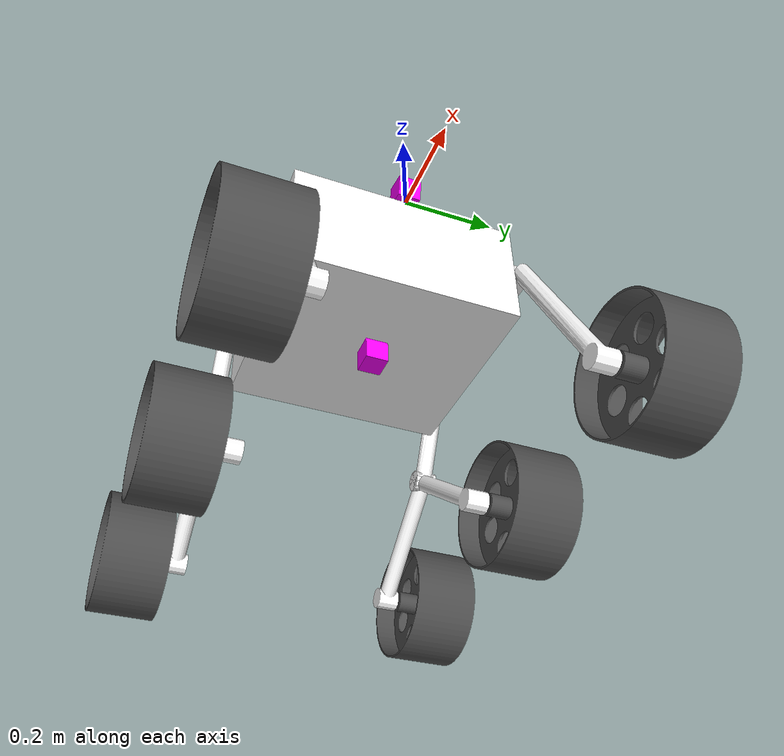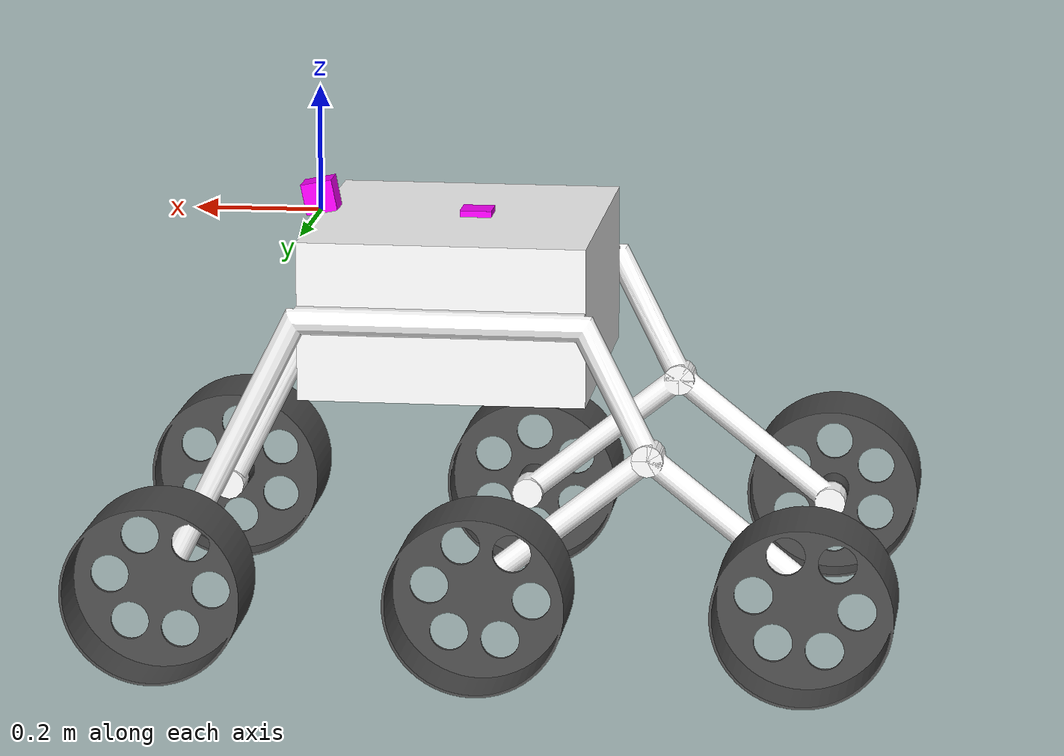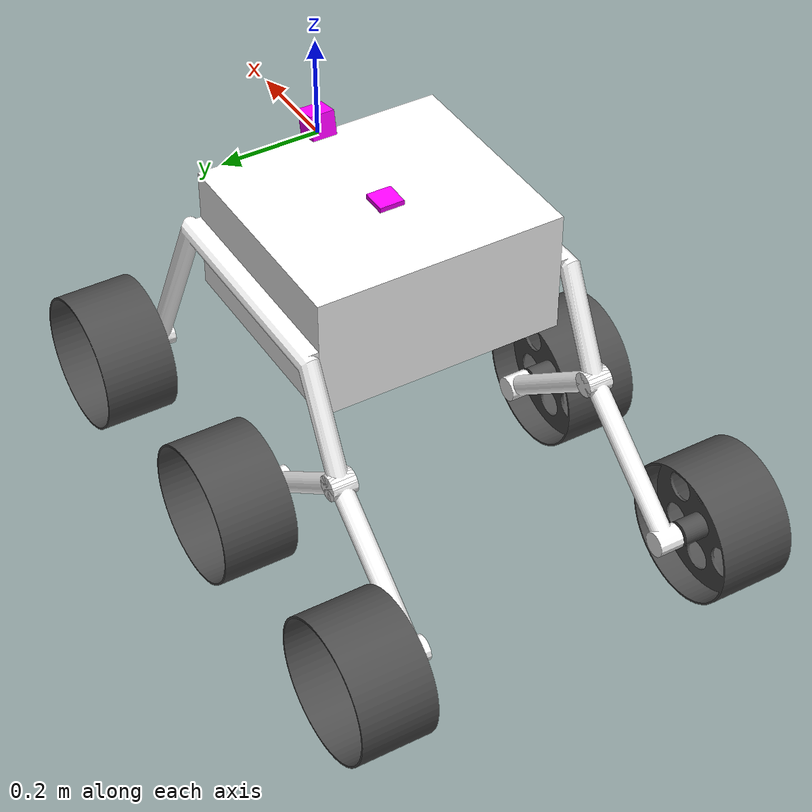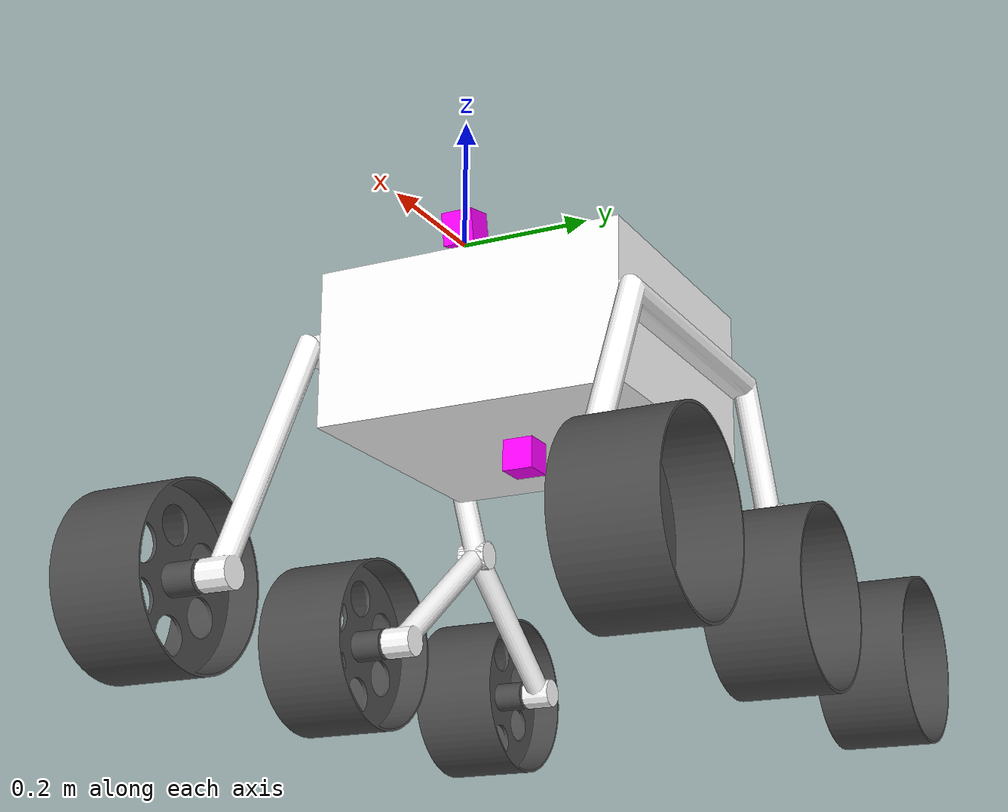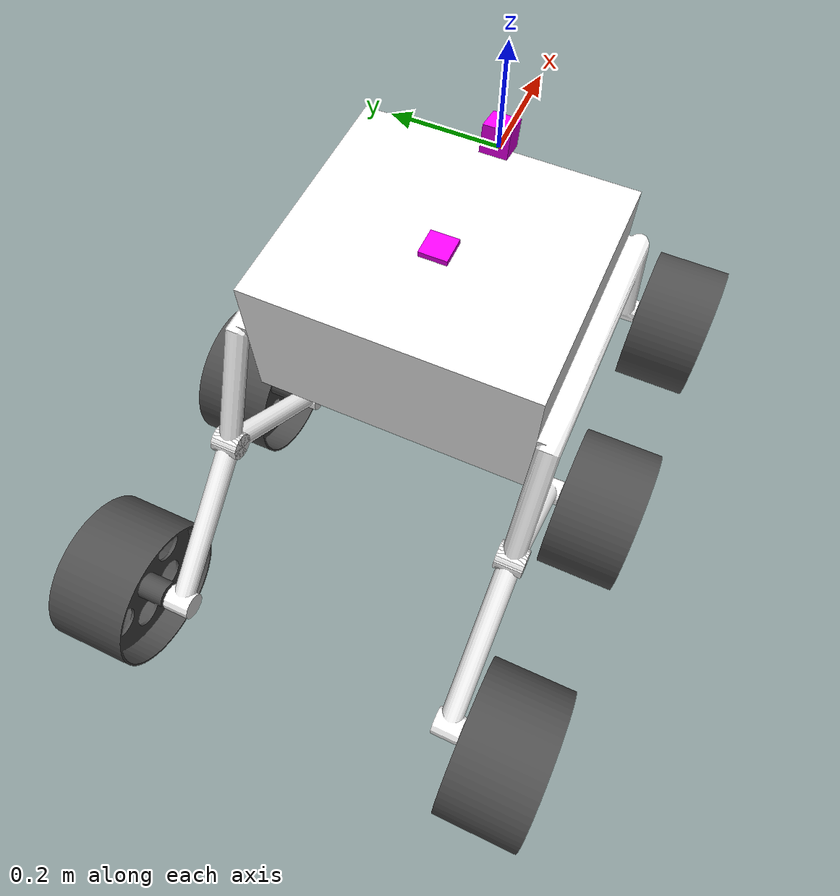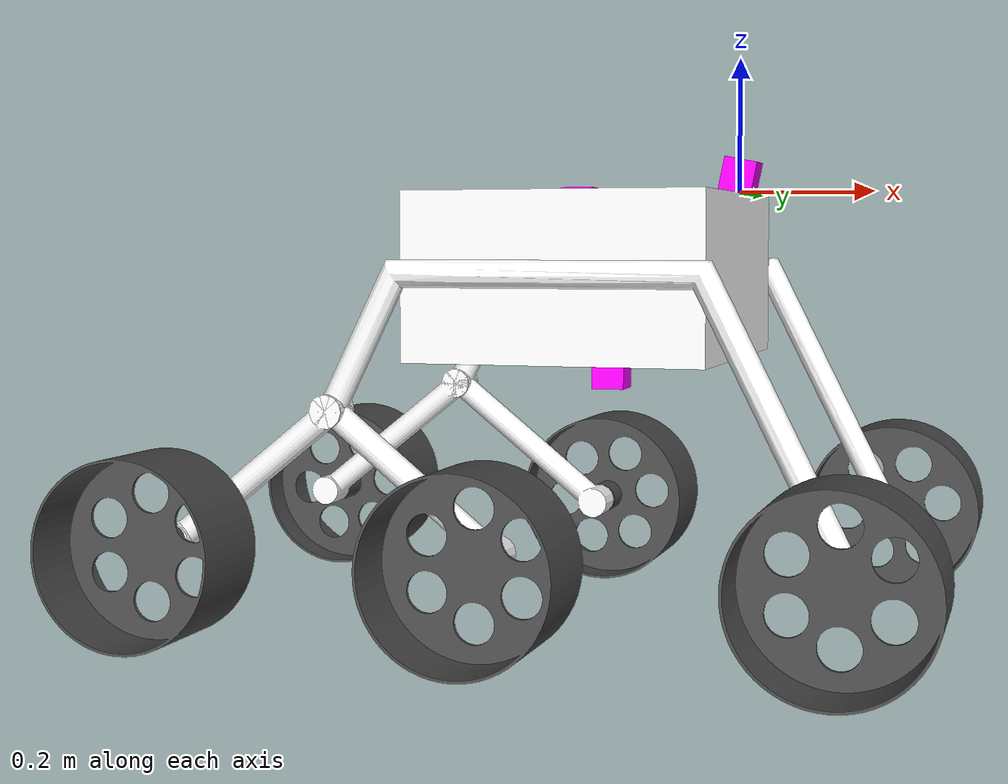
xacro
<?xml version="1.0" encoding="utf-8"?>
<robot
  name="rover" xmlns:xacro="http://ros.org/wiki/xacro">
  <gazebo>
    <plugin name="gazebo_ros_control" filename="libgazebo_ros_control.so">
      <robotNamespace>/rover</robotNamespace>
    </plugin>
  </gazebo>
  <link
    name="base_link">
    <inertial>
      <origin
        xyz="-0.225 -1.11022302462516E-16 -0.125"
        rpy="0 0 0" />
      <mass
        value="30.9375" />
      <inertia
        ixx="1.7431640625"
        ixy="-3.78458838342273E-17"
        ixz="-7.7412035115465E-18"
        iyy="1.478203125"
        iyz="9.94729441762504E-34"
        izz="2.5241015625" />
    </inertial>
    <visual>
      <origin
        xyz="0 0 0"
        rpy="0 0 0" />
      <geometry>
        <mesh
          filename="package://rover/meshes/base_link.STL" />
      </geometry>
      <material
        name="">
        <color
          rgba="1 1 1 1" />
      </material>
    </visual>
    <collision>
      <origin
        xyz="0 0 0"
        rpy="0 0 0" />
      <geometry>
        <mesh
          filename="package://rover/meshes/base_link.STL" />
      </geometry>
    </collision>
  </link>

  <link name="body_imu">
    <inertial>
      <origin
        xyz="0 0 0"
        rpy="0 0 0" />
      <mass
        value="0.1" />
      <inertia
        ixx="1E-6"
        ixy="1E-6"
        ixz="1E-6"
        iyy="1E-6"
        iyz="1E-6"
        izz="1E-6" />
    </inertial>
    <visual>
      <origin
        xyz="0 0 0"
        rpy="0 0 0" />
      <geometry>
        <box size="0.05 0.05 0.01"/>
      </geometry>
      <material
        name="">
        <color
          rgba="1 0 1 1" />
      </material>
    </visual>
    <collision>
      <origin
        xyz="0 0 0"
        rpy="0 0 0" />
      <geometry>
        <box size="0.05 0.05 0.01"/>
      </geometry>
    </collision>
  </link>
  <joint
    name="base_to_body_imu"
    type="fixed">
    <origin
      xyz="-0.25 0 0.005"
      rpy="0 0 0" />
    <parent
      link="base_link" />
    <child
      link="body_imu" />
    <axis
      xyz="0 0 0" />
  </joint>

<link name="body_camera">
    <inertial>
      <origin
        xyz="0 0 0"
        rpy="0 0 0" />
      <mass
        value="0.1" />
      <inertia
        ixx="1E-6"
        ixy="1E-6"
        ixz="1E-6"
        iyy="1E-6"
        iyz="1E-6"
        izz="1E-6" />
    </inertial>
    <visual>
      <origin
        xyz="0 0 0"
        rpy="0 0 0" />
      <geometry>
        <box size="0.05 0.05 0.05"/>
      </geometry>
      <material
        name="">
        <color
          rgba="1 0 1 1" />
      </material>
    </visual>
    <collision>
      <origin
        xyz="0 0 0"
        rpy="0 0 0" />
      <geometry>
        <box size="0.05 0.05 0.01"/>
      </geometry>
    </collision>
  </link>
  <joint
    name="base_to_body_camera"
    type="fixed">
    <origin
      xyz="0 0 0.025"
      rpy="0 0.2 0" />
    <parent
      link="base_link" />
    <child
      link="body_camera" />
    <axis
      xyz="0 0 0" />
  </joint>
  <joint name="camera_optical_joint" type="fixed">
    <!-- these values have to be these values otherwise the gazebo camera
        image won't be aligned properly with the frame it is supposedly
        originating from -->
    <origin xyz="0 0 0" rpy="${-pi/2} 0 ${-pi/2}"/>
    <parent link="body_camera"/>
    <child link="camera_link_optical"/>
  </joint>

  <link name="camera_link_optical">
  </link>

<link name="ground_camera">
    <inertial>
      <origin
        xyz="0 0 0"
        rpy="0 0 0" />
      <mass
        value="0.1" />
      <inertia
        ixx="1E-6"
        ixy="1E-6"
        ixz="1E-6"
        iyy="1E-6"
        iyz="1E-6"
        izz="1E-6" />
    </inertial>
    <visual>
      <origin
        xyz="0 0 0"
        rpy="0 0 0" />
      <geometry>
        <box size="0.05 0.05 0.05"/>
      </geometry>
      <material
        name="">
        <color
          rgba="1 0 1 1" />
      </material>
    </visual>
    <collision>
      <origin
        xyz="0 0 0"
        rpy="0 0 0" />
      <geometry>
        <box size="0.05 0.05 0.01"/>
      </geometry>
    </collision>
  </link>
  <joint
    name="base_to_ground_camera"
    type="fixed">
    <origin
      xyz="-0.200 0 -0.275"
      rpy="0 1.5707 0" />
    <parent
      link="base_link" />
    <child
      link="ground_camera" />
    <axis
      xyz="0 0 0" />
  </joint>
  <joint name="ground_camera_optical_joint" type="fixed">
    <!-- these values have to be these values otherwise the gazebo camera
        image won't be aligned properly with the frame it is supposedly
        originating from -->
    <origin xyz="0 0 0" rpy="${-pi/2} 0 ${-pi/2}"/>
    <parent link="ground_camera"/>
    <child link="ground_camera_link_optical"/>
  </joint>

  <link name="ground_camera_link_optical">
  </link>

  <link
    name="left_leg_upper">
    <inertial>
      <origin
        xyz="-0.194165747411793 -0.112389539399822 -0.000731351711592554"
        rpy="0 0 0" />
      <mass
        value="1.93248346185159" />
      <inertia
        ixx="0.0330489550335704"
        ixy="-0.0318954932035645"
        ixz="9.8708775108311E-05"
        iyy="0.126428004084038"
        iyz="0.000159249238895126"
        izz="0.159014173585941" />
    </inertial>
    <visual>
      <origin
        xyz="0 0 0"
        rpy="0 0 0" />
      <geometry>
        <mesh
          filename="package://rover/meshes/left_leg_upper.STL" />
      </geometry>
      <material
        name="">
        <color
          rgba="1 1 1 1" />
      </material>
    </visual>
    <collision>
      <origin
        xyz="0 0 0"
        rpy="0 0 0" />
      <geometry>
        <mesh
          filename="package://rover/meshes/left_leg_upper.STL" />
      </geometry>
    </collision>
  </link>
  <joint
    name="base_to_left_leg_upper"
    type="fixed">
    <origin
      xyz="-0.35 0.27 -0.12"
      rpy="1.5707963267949 0 3.14159265358979" />
    <parent
      link="base_link" />
    <child
      link="left_leg_upper" />
    <axis
      xyz="0 0 0" />
  </joint>
  <link
    name="left_front_wheel">
    <inertial>
      <origin
        xyz="0 0 -0.063051"
        rpy="0 0 0" />
      <mass
        value="1.9382" />
      <inertia
        ixx="0.016737"
        ixy="-4.3368E-18"
        ixz="-4.7847E-18"
        iyy="0.016737"
        iyz="-3.3107E-19"
        izz="0.027927" />
    </inertial>
    <visual>
      <origin
        xyz="0 0 0"
        rpy="0 0 0" />
      <geometry>
        <mesh
          filename="package://rover/meshes/left_front_wheel.STL" />
      </geometry>
      <material
        name="">
        <color
          rgba="0.29804 0.29804 0.29804 1" />
      </material>
    </visual>
    <collision>
      <origin
        xyz="0 0 0"
        rpy="0 0 0" />
      <geometry>
        <mesh
          filename="package://rover/meshes/left_front_wheel.STL" />
      </geometry>
    </collision>
  </link>
  <joint
    name="lf"
    type="continuous">
    <origin
      xyz="-0.55 -0.4 0.03"
      rpy="3.1416 0 -2.7485" />
    <parent
      link="left_leg_upper" />
    <child
      link="left_front_wheel" />
    <axis
      xyz="0 0 1" />
    <limit
      effort="60"
      velocity="20" />
    <dynamics
      damping="0.6"
      friction="1" />
  </joint>
  <link
    name="left_leg_lower">
    <inertial>
      <origin
        xyz="-3.20988925231469E-08 -0.10997054731385 9.21239687645681E-07"
        rpy="0 0 0" />
      <mass
        value="1.1716591412149" />
      <inertia
        ixx="0.00566372324013256"
        ixy="2.07742015864643E-08"
        ixz="-1.93567838383602E-08"
        iyy="0.0308249227849267"
        iyz="-1.50396529209713E-08"
        izz="0.0361793132911607" />
    </inertial>
    <visual>
      <origin
        xyz="0 0 0"
        rpy="0 0 0" />
      <geometry>
        <mesh
          filename="package://rover/meshes/left_leg_lower.STL" />
      </geometry>
      <material
        name="">
        <color
          rgba="1 1 1 1" />
      </material>
    </visual>
    <collision>
      <origin
        xyz="0 0 0"
        rpy="0 0 0" />
      <geometry>
        <mesh
          filename="package://rover/meshes/left_leg_lower.STL" />
      </geometry>
    </collision>
  </link>
  <joint
    name="left_leg_upper_to_lower"
    type="continuous">
    <origin
      xyz="0.2 -0.2 0"
      rpy="0 0 0" />
    <parent
      link="left_leg_upper" />
    <child
      link="left_leg_lower" />
    <axis
      xyz="0 0 1" />
    <limit
      lower="-1"
      upper="1"
      effort="0"
      velocity="0" />
  </joint>
  <link
    name="left_mid_wheel">
    <inertial>
      <origin
        xyz="4.1633E-17 0 -0.063051"
        rpy="0 0 0" />
      <mass
        value="1.9382" />
      <inertia
        ixx="0.016737"
        ixy="-2.6563E-18"
        ixz="-2.7439E-18"
        iyy="0.016737"
        iyz="8.0243E-19"
        izz="0.027927" />
    </inertial>
    <visual>
      <origin
        xyz="0 0 0"
        rpy="0 0 0" />
      <geometry>
        <mesh
          filename="package://rover/meshes/left_mid_wheel.STL" />
      </geometry>
      <material
        name="">
        <color
          rgba="0.29804 0.29804 0.29804 1" />
      </material>
    </visual>
    <collision>
      <origin
        xyz="0 0 0"
        rpy="0 0 0" />
      <geometry>
        <mesh
          filename="package://rover/meshes/left_mid_wheel.STL" />
      </geometry>
    </collision>
  </link>
  <joint
    name="lm"
    type="continuous">
    <origin
      xyz="-0.25 -0.2 0.03"
      rpy="3.1416 0 -1.6099" />
    <parent
      link="left_leg_lower" />
    <child
      link="left_mid_wheel" />
    <axis
      xyz="0 0 1" />
    <limit
      effort="60"
      velocity="20" />
    <dynamics
      damping="0.6"
      friction="1" />
  </joint>
  <link
    name="left_back_wheel">
    <inertial>
      <origin
        xyz="0 0 -0.063051"
        rpy="0 0 0" />
      <mass
        value="1.9382" />
      <inertia
        ixx="0.016737"
        ixy="-2.6021E-18"
        ixz="-8.0184E-18"
        iyy="0.016737"
        iyz="-3.2234E-19"
        izz="0.027927" />
    </inertial>
    <visual>
      <origin
        xyz="0 0 0"
        rpy="0 0 0" />
      <geometry>
        <mesh
          filename="package://rover/meshes/left_back_wheel.STL" />
      </geometry>
      <material
        name="">
        <color
          rgba="0.29804 0.29804 0.29804 1" />
      </material>
    </visual>
    <collision>
      <origin
        xyz="0 0 0"
        rpy="0 0 0" />
      <geometry>
        <mesh
          filename="package://rover/meshes/left_back_wheel.STL" />
      </geometry>
    </collision>
  </link>
  <joint
    name="lb"
    type="continuous">
    <origin
      xyz="0.25 -0.2 0.0299999999999998"
      rpy="3.14159265358979 0 -2.74849784316328" />
    <parent
      link="left_leg_lower" />
    <child
      link="left_back_wheel" />
    <axis
      xyz="0 0 1" />
    <limit
      effort="60"
      velocity="20" />
    <dynamics
      damping="0.6"
      friction="1" />
  </joint>
  <link
    name="right_leg_upper">
    <inertial>
      <origin
        xyz="0 0 0"
        rpy="0 0 0" />
      <mass
        value="1.93248346185159" />
      <inertia
        ixx="0.0330489550335704"
        ixy="-0.0318954932035645"
        ixz="9.8708775108311E-05"
        iyy="0.126428004084038"
        iyz="0.000159249238895126"
        izz="0.159014173585941" />
    </inertial>
    <visual>
      <origin
        xyz="0 0 0"
        rpy="0 0 0" />
      <geometry>
        <mesh
          filename="package://rover/meshes/right_leg_upper.STL" />
      </geometry>
      <material
        name="">
        <color
          rgba="1 1 1 1" />
      </material>
    </visual>
    <collision>
      <origin
        xyz="0 0 0"
        rpy="0 0 0" />
      <geometry>
        <mesh
          filename="package://rover/meshes/right_leg_upper.STL" />
      </geometry>
    </collision>
  </link>
  <joint
    name="base_to_right_leg_upper"
    type="fixed">
    <origin
      xyz="-0.35 -0.27 -0.12"
      rpy="1.5707963267949 0 3.14159265358979" />
    <parent
      link="base_link" />
    <child
      link="right_leg_upper" />
    <axis
      xyz="0 0 0" />
  </joint>
  <link
    name="right_front_wheel">
    <inertial>
      <origin
        xyz="-1.1102E-16 -8.3267E-17 -0.063051"
        rpy="0 0 0" />
      <mass
        value="1.9382" />
      <inertia
        ixx="0.016737"
        ixy="3.8392E-18"
        ixz="-1.3175E-18"
        iyy="0.016737"
        iyz="3.5572E-19"
        izz="0.027927" />
    </inertial>
    <visual>
      <origin
        xyz="0 0 0"
        rpy="0 0 0" />
      <geometry>
        <mesh
          filename="package://rover/meshes/right_front_wheel.STL" />
      </geometry>
      <material
        name="">
        <color
          rgba="0.29804 0.29804 0.29804 1" />
      </material>
    </visual>
    <collision>
      <origin
        xyz="0 0 0"
        rpy="0 0 0" />
      <geometry>
        <mesh
          filename="package://rover/meshes/right_front_wheel.STL" />
      </geometry>
    </collision>
  </link>
  <joint
    name="rf"
    type="continuous">
    <origin
      xyz="-0.55 -0.4 -0.0299999999999999"
      rpy="0 0 0" />
    <parent
      link="right_leg_upper" />
    <child
      link="right_front_wheel" />
    <axis
      xyz="0 0 1" />
    <limit
      effort="60"
      velocity="20" />
    <dynamics
      damping="0.6"
      friction="1" />
  </joint>
  <link
    name="right_leg_lower">
    <inertial>
      <origin
        xyz="-3.20988916349685E-08 -0.10997054731385 9.21239687534658E-07"
        rpy="0 0 0" />
      <mass
        value="1.1716591412149" />
      <inertia
        ixx="0.00566372324013256"
        ixy="2.07742015892293E-08"
        ixz="-1.93567838275014E-08"
        iyy="0.0308249227849267"
        iyz="-1.50396529213661E-08"
        izz="0.0361793132911607" />
    </inertial>
    <visual>
      <origin
        xyz="0 0 0"
        rpy="0 0 0" />
      <geometry>
        <mesh
          filename="package://rover/meshes/right_leg_lower.STL" />
      </geometry>
      <material
        name="">
        <color
          rgba="1 1 1 1" />
      </material>
    </visual>
    <collision>
      <origin
        xyz="0 0 0"
        rpy="0 0 0" />
      <geometry>
        <mesh
          filename="package://rover/meshes/right_leg_lower.STL" />
      </geometry>
    </collision>
  </link>
  <joint
    name="right_leg_upper_to_lower"
    type="continuous">
    <origin
      xyz="0.2 -0.2 0"
      rpy="0 0 0" />
    <parent
      link="right_leg_upper" />
    <child
      link="right_leg_lower" />
    <axis
      xyz="0 0 1" />
    <limit
      lower="-1"
      upper="1"
      effort="0"
      velocity="0" />
  </joint>
  <link
    name="right_mid_wheel">
    <inertial>
      <origin
        xyz="5.5511E-17 -1.3878E-17 -0.063051"
        rpy="0 0 0" />
      <mass
        value="1.9382" />
      <inertia
        ixx="0.016737"
        ixy="3.3352E-18"
        ixz="-7.5184E-18"
        iyy="0.016737"
        iyz="3.6161E-19"
        izz="0.027927" />
    </inertial>
    <visual>
      <origin
        xyz="0 0 0"
        rpy="0 0 0" />
      <geometry>
        <mesh
          filename="package://rover/meshes/right_mid_wheel.STL" />
      </geometry>
      <material
        name="">
        <color
          rgba="0.29804 0.29804 0.29804 1" />
      </material>
    </visual>
    <collision>
      <origin
        xyz="0 0 0"
        rpy="0 0 0" />
      <geometry>
        <mesh
          filename="package://rover/meshes/right_mid_wheel.STL" />
      </geometry>
    </collision>
  </link>
  <joint
    name="rm"
    type="continuous">
    <origin
      xyz="-0.25 -0.2 -0.03"
      rpy="0 0 0" />
    <parent
      link="right_leg_lower" />
    <child
      link="right_mid_wheel" />
    <axis
      xyz="0 0 1" />
    <limit
      effort="60"
      velocity="20" />
    <dynamics
      damping="0.6"
      friction="1" />
  </joint>
  <link
    name="right_back_wheel">
    <inertial>
      <origin
        xyz="-1.1102E-16 6.9389E-17 -0.063051"
        rpy="0 0 0" />
      <mass
        value="1.9382" />
      <inertia
        ixx="0.016737"
        ixy="3.0358E-18"
        ixz="-1.3146E-18"
        iyy="0.016737"
        iyz="3.1595E-19"
        izz="0.027927" />
    </inertial>
    <visual>
      <origin
        xyz="0 0 0"
        rpy="0 0 0" />
      <geometry>
        <mesh
          filename="package://rover/meshes/right_back_wheel.STL" />
      </geometry>
      <material
        name="">
        <color
          rgba="0.29804 0.29804 0.29804 1" />
      </material>
    </visual>
    <collision>
      <origin
        xyz="0 0 0"
        rpy="0 0 0" />
      <geometry>
        <mesh
          filename="package://rover/meshes/right_back_wheel.STL" />
      </geometry>
    </collision>
  </link>
  <joint
    name="rb"
    type="continuous">
    <origin
      xyz="0.25 -0.2 -0.03"
      rpy="0 0 -0.0404094746761278" />
    <parent
      link="right_leg_lower" />
    <child
      link="right_back_wheel" />
    <axis
      xyz="0 0 1" />
    <limit
      effort="60"
      velocity="20" />
    <dynamics
      damping="0.6"
      friction="1" />
  </joint>
    <transmission name="lf_trans">
      <type>transmission_interface/SimpleTransmission</type>
      <actuator name="lf_motor">
        <mechanicalReduction>1</mechanicalReduction>
      </actuator>
      <joint name="lf">
	      <hardwareInterface>hardware_interface/EffortJointInterface</hardwareInterface>
      </joint>
    </transmission>

    <transmission name="lm_trans">
      <type>transmission_interface/SimpleTransmission</type>
      <actuator name="lm_motor">
        <mechanicalReduction>1</mechanicalReduction>
      </actuator>
      <joint name="lm">
	      <hardwareInterface>hardware_interface/EffortJointInterface</hardwareInterface>
      </joint>
    </transmission>

    <transmission name="lb_trans">
      <type>transmission_interface/SimpleTransmission</type>
      <actuator name="lb_motor">
        <mechanicalReduction>1</mechanicalReduction>
      </actuator>
      <joint name="lb">
	      <hardwareInterface>hardware_interface/EffortJointInterface</hardwareInterface>
      </joint>
    </transmission>

    <transmission name="rf_trans">
      <type>transmission_interface/SimpleTransmission</type>
      <actuator name="rf_motor">
        <mechanicalReduction>1</mechanicalReduction>
      </actuator>
      <joint name="rf">
	      <hardwareInterface>hardware_interface/EffortJointInterface</hardwareInterface>
      </joint>
    </transmission>

    <transmission name="rm_trans">
      <type>transmission_interface/SimpleTransmission</type>
      <actuator name="rm_motor">
        <mechanicalReduction>1</mechanicalReduction>
      </actuator>
      <joint name="rm">
	      <hardwareInterface>hardware_interface/EffortJointInterface</hardwareInterface>
      </joint>
    </transmission>

    <transmission name="rb_trans">
      <type>transmission_interface/SimpleTransmission</type>
      <actuator name="rb_motor">
        <mechanicalReduction>1</mechanicalReduction>
      </actuator>
      <joint name="rb">
	      <hardwareInterface>hardware_interface/EffortJointInterface</hardwareInterface>
      </joint>
    </transmission>

  <gazebo reference="body_imu">
    <gravity>true</gravity>
    <sensor name="body_imu" type="imu">
      <always_on>true</always_on>
      <update_rate>100</update_rate>
      <visualize>true</visualize>
      <topic>__default_topic__</topic>
      <plugin filename="libgazebo_ros_imu_sensor.so" name="imu_plugin">
        <topicName>/rover/imu</topicName>
        <bodyName>imu_link</bodyName>
        <updateRateHZ>100.0</updateRateHZ>
        <gaussianNoise>0.0</gaussianNoise>
        <xyzOffset>0 0 0</xyzOffset>
        <rpyOffset>0 0 0</rpyOffset>
        <frameName>body_imu</frameName>
      </plugin>
      <pose>0 0 0 0 0 0</pose>
    </sensor>
  </gazebo>

<!-- camera -->
  <gazebo reference="ground_camera">
    <sensor type="camera" name="camera1">
      <update_rate>30.0</update_rate>
      <camera name="head">
        <horizontal_fov>1.5707</horizontal_fov>
        <image>
          <width>1280</width>
          <height>720</height>
          <format>R8G8B8</format>
        </image>
        <clip>
          <near>0.02</near>
          <far>300</far>
        </clip>
        <noise>
          <type>gaussian</type>
          <!-- Noise is sampled independently per pixel on each frame.
               That pixel's noise value is added to each of its color
               channels, which at that point lie in the range [0,1]. -->
          <mean>0.0</mean>
          <stddev>0.007</stddev>
        </noise>
      </camera>
      <plugin name="camera_controller" filename="libgazebo_ros_camera.so">
        <alwaysOn>true</alwaysOn>
        <updateRate>0.0</updateRate>
        <cameraName>rover/ground_camera</cameraName>
        <imageTopicName>image_raw</imageTopicName>
        <cameraInfoTopicName>camera_info</cameraInfoTopicName>
        <frameName>ground_camera_link_optical</frameName>
        <hackBaseline>0.07</hackBaseline>
        <distortionK1>0.0</distortionK1>
        <distortionK2>0.0</distortionK2>
        <distortionK3>0.0</distortionK3>
        <distortionT1>0.0</distortionT1>
        <distortionT2>0.0</distortionT2>
      </plugin>
    </sensor>
  </gazebo>

<gazebo reference="body_camera">
  <sensor name="body_camera" type="depth">
    <update_rate>30</update_rate>
    <camera>
      <horizontal_fov>1.5707963</horizontal_fov>
      <image>
        <width>1920</width>
        <height>1080</height>
        <format>R8G8B8</format>
      </image>
      <clip>
        <near>0.3</near>
        <far>25</far>
      </clip>
    </camera>
    <plugin name="body_camera_controller" filename="libgazebo_ros_openni_kinect.so">
      <baseline>0.2</baseline>
      <alwaysOn>true</alwaysOn>
      <updateRate>1.0</updateRate>
      <cameraName>body_camera_ir</cameraName>
      <imageTopicName>/rover/body_camera/color/image_raw</imageTopicName>
      <cameraInfoTopicName>/rover/body_camera/depth/camera_info</cameraInfoTopicName>
      <depthImageTopicName>/rover/body_camera/depth/image_raw</depthImageTopicName>
      <depthImageInfoTopicName>/rover/body_camera/depth/camera_info</depthImageInfoTopicName>
      <pointCloudTopicName>/rover/body_camera/depth/points</pointCloudTopicName>
      <frameName>camera_link_optical</frameName>
      <pointCloudCutoff>0.3</pointCloudCutoff>
      <pointCloudCutoffMax>25.0</pointCloudCutoffMax>
      <distortionK1>0.00000001</distortionK1>
      <distortionK2>0.00000001</distortionK2>
      <distortionK3>0.00000001</distortionK3>
      <distortionT1>0.00000001</distortionT1>
      <distortionT2>0.00000001</distortionT2>
      <CxPrime>0</CxPrime>
      <Cx>0</Cx>
      <Cy>0</Cy>
      <focalLength>0</focalLength>
      <hackBaseline>0</hackBaseline>
    </plugin>
  </sensor>
</gazebo>

<gazebo>
    <plugin name="novatel_gps_sim" filename="libhector_gazebo_ros_gps.so">
      <alwaysOn>1</alwaysOn>
      <updateRate>10.0</updateRate>
      <bodyName>base_link</bodyName>
      <topicName>rover/gps</topicName>
      <velocityTopicName>rover/gps_velocity</velocityTopicName>
      <drift>5.0 5.0 5.0</drift>
      <gaussianNoise>0.1 0.1 0.1</gaussianNoise>
      <velocityDrift>0 0 0</velocityDrift>
      <velocityGaussianNoise>0.1 0.1 0.1</velocityGaussianNoise>
    </plugin>
  </gazebo>

<xacro:macro name="wheel_fric_setting" params="prefix suffix">
<gazebo reference="${prefix}_${suffix}_wheel">
        <mu1>0.45</mu1>
        <mu2>0.40</mu2>
	<material>Gazebo/Grey</material>
</gazebo>
</xacro:macro>

<xacro:wheel_fric_setting prefix="left" suffix="front"/>
<xacro:wheel_fric_setting prefix="left" suffix="mid"/>
<xacro:wheel_fric_setting prefix="left" suffix="back"/>
<xacro:wheel_fric_setting prefix="right" suffix="front"/>
<xacro:wheel_fric_setting prefix="right" suffix="mid"/>
<xacro:wheel_fric_setting prefix="right" suffix="back"/>

</robot>
